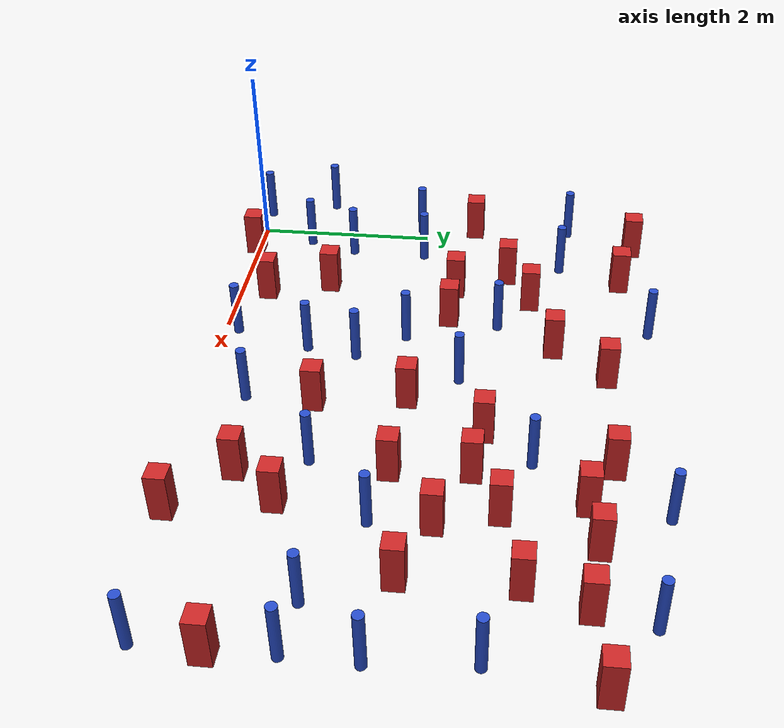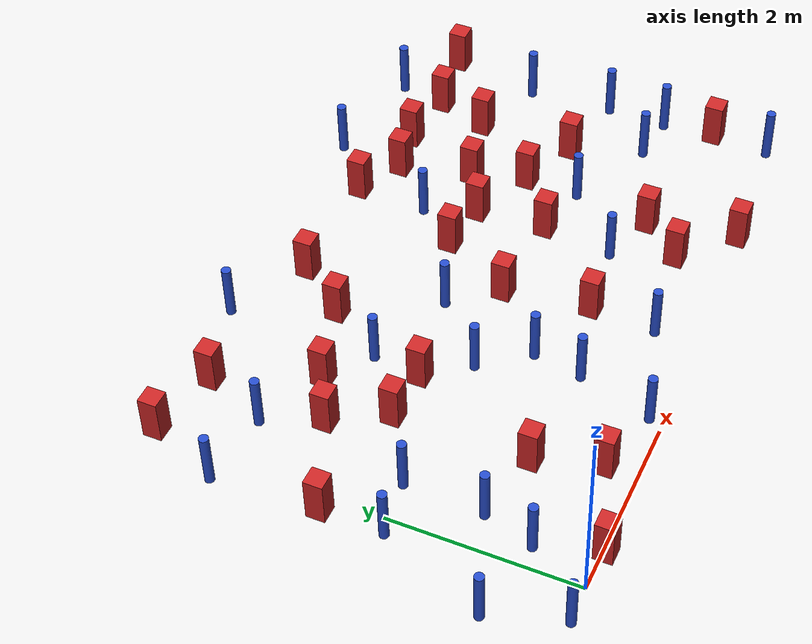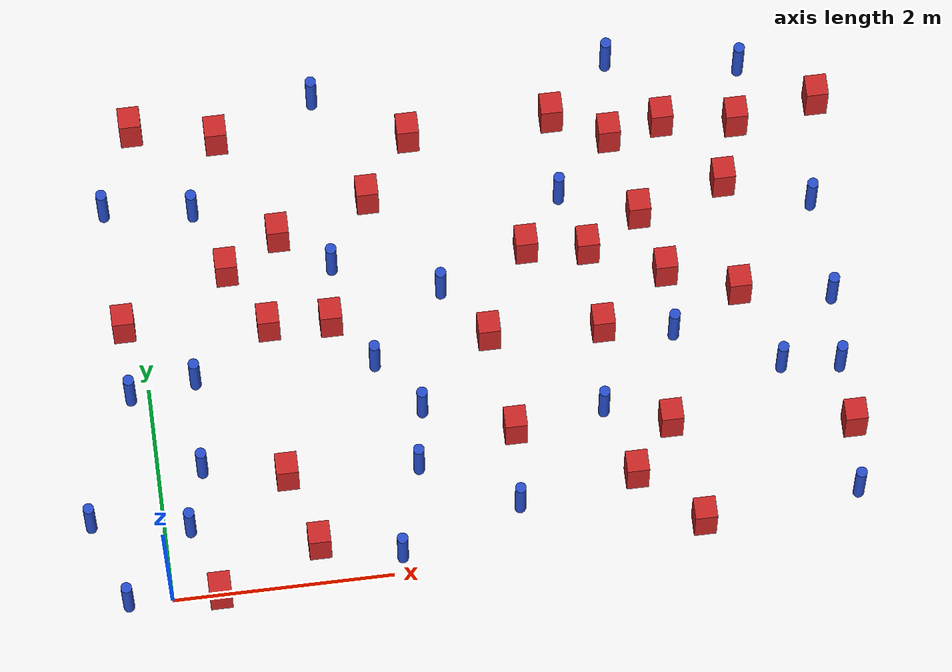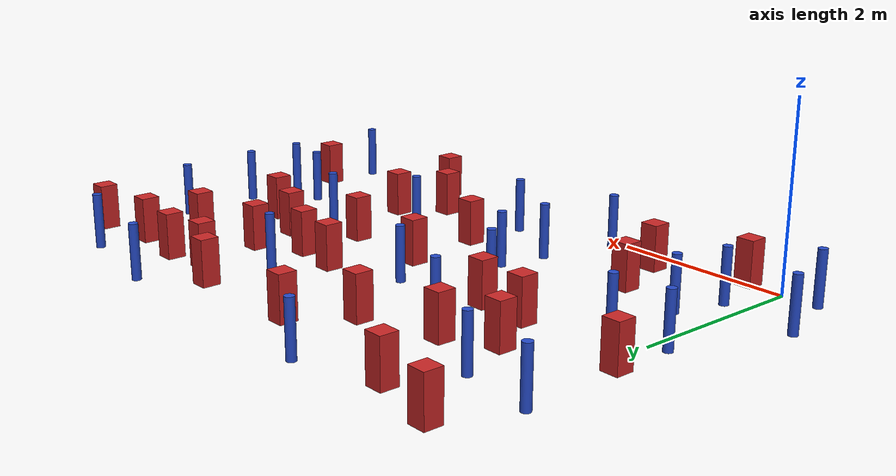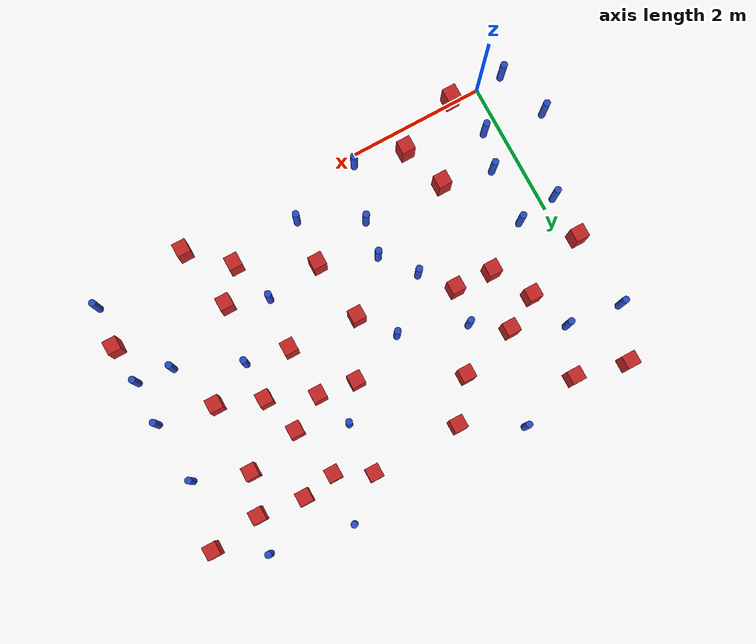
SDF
<sdf version="1.6">
 <model name="dense_97">
  <model name="square_post_obstacle3">
   <static>true</static>
   <pose>1.3197557422 3.28086362444 1.91545236811e-07 -7.35059704564e-06 1.12565212e-07 2.39332434364e-05</pose>
   <link name="link">
    <pose>0 0 0.25 0 -0 0</pose>
    <inertial>
     <mass>100</mass>
     <inertia>
      <ixx>0.166667</ixx>
      <ixy>0</ixy>
      <ixz>0</ixz>
      <iyy>0.166667</iyy>
      <iyz>0</iyz>
      <izz>0.166667</izz>
     </inertia>
    </inertial>
    <collision name="collision"><geometry><box><size>.2 .2 .5</size></box></geometry></collision>
    <visual name="visual">
     <geometry><box><size>.2 .2 .5</size></box></geometry>
     <material>
      <script><name>Gazebo/Red</name><uri>file://media/materials/scripts/gazebo.material</uri></script>
     </material>
    </visual>
   </link>
  </model>
  <model name="pole_obstacle7">
   <static>true</static>
   <pose>6.24190343363 1.45891795342 7.38925637345e-09 -8.471706928e-08 1.24976765134e-08 -1.74513093015e-07</pose>
   <link name="link">
    <pose>0 0 0.3 0 -0 0</pose>
    <inertial>
     <mass>1</mass>
     <inertia><ixx>0.145833</ixx><ixy>0</ixy><ixz>0</ixz><iyy>0.145833</iyy><iyz>0</iyz><izz>0.125</izz></inertia>
    </inertial>
    <collision name="collision">
     <geometry><cylinder><radius>0.05</radius><length>.6</length></cylinder></geometry>
    </collision>
    <visual name="visual">
     <geometry><cylinder><radius>0.05</radius><length>.6</length></cylinder></geometry>
     <material>
      <script><name>Gazebo/Blue</name><uri>file://media/materials/scripts/gazebo.material</uri></script>
     </material>
    </visual>
   </link>
  </model>
  <model name="square_post_obstacle10">
   <static>true</static>
   <pose>3.24088928727 1.18970993105 1.91545236811e-07 -7.35059704564e-06 1.12565212e-07 2.39332434364e-05</pose>
   <link name="link">
    <pose>0 0 0.25 0 -0 0</pose>
    <inertial>
     <mass>100</mass>
     <inertia>
      <ixx>0.166667</ixx>
      <ixy>0</ixy>
      <ixz>0</ixz>
      <iyy>0.166667</iyy>
      <iyz>0</iyz>
      <izz>0.166667</izz>
     </inertia>
    </inertial>
    <collision name="collision"><geometry><box><size>.2 .2 .5</size></box></geometry></collision>
    <visual name="visual">
     <geometry><box><size>.2 .2 .5</size></box></geometry>
     <material>
      <script><name>Gazebo/Red</name><uri>file://media/materials/scripts/gazebo.material</uri></script>
     </material>
    </visual>
   </link>
  </model>
  <model name="pole_obstacle15">
   <static>true</static>
   <pose>0.3983858445 1.15659528781 7.38925637345e-09 -8.47170692798e-08 1.24976765025e-08 -1.74513093018e-07</pose>
   <link name="link">
    <pose>0 0 0.3 0 -0 0</pose>
    <inertial>
     <mass>1</mass>
     <inertia><ixx>0.145833</ixx><ixy>0</ixy><ixz>0</ixz><iyy>0.145833</iyy><iyz>0</iyz><izz>0.125</izz></inertia>
    </inertial>
    <collision name="collision">
     <geometry><cylinder><radius>0.05</radius><length>.6</length></cylinder></geometry>
    </collision>
    <visual name="visual">
     <geometry><cylinder><radius>0.05</radius><length>.6</length></cylinder></geometry>
     <material>
      <script><name>Gazebo/Blue</name><uri>file://media/materials/scripts/gazebo.material</uri></script>
     </material>
    </visual>
   </link>
  </model>
  <model name="pole_obstacle17">
   <static>true</static>
   <pose>0.426997091301 2.00244062308 7.38925637345e-09 -8.47170692799e-08 1.2497676506e-08 -1.74513093018e-07</pose>
   <link name="link">
    <pose>0 0 0.3 0 -0 0</pose>
    <inertial>
     <mass>1</mass>
     <inertia><ixx>0.145833</ixx><ixy>0</ixy><ixz>0</ixz><iyy>0.145833</iyy><iyz>0</iyz><izz>0.125</izz></inertia>
    </inertial>
    <collision name="collision">
     <geometry><cylinder><radius>0.05</radius><length>.6</length></cylinder></geometry>
    </collision>
    <visual name="visual">
     <geometry><cylinder><radius>0.05</radius><length>.6</length></cylinder></geometry>
     <material>
      <script><name>Gazebo/Blue</name><uri>file://media/materials/scripts/gazebo.material</uri></script>
     </material>
    </visual>
   </link>
  </model>
  <model name="square_post_obstacle18">
   <static>true</static>
   <pose>0.0977057017905 4.46174153704 1.91545236811e-07 -7.35059704564e-06 1.12565212e-07 2.39332434364e-05</pose>
   <link name="link">
    <pose>0 0 0.25 0 -0 0</pose>
    <inertial>
     <mass>100</mass>
     <inertia>
      <ixx>0.166667</ixx>
      <ixy>0</ixy>
      <ixz>0</ixz>
      <iyy>0.166667</iyy>
      <iyz>0</iyz>
      <izz>0.166667</izz>
     </inertia>
    </inertial>
    <collision name="collision"><geometry><box><size>.2 .2 .5</size></box></geometry></collision>
    <visual name="visual">
     <geometry><box><size>.2 .2 .5</size></box></geometry>
     <material>
      <script><name>Gazebo/Red</name><uri>file://media/materials/scripts/gazebo.material</uri></script>
     </material>
    </visual>
   </link>
  </model>
  <model name="square_post_obstacle20">
   <static>true</static>
   <pose>1.3652218517 0.3256208881 1.91545236811e-07 -7.35059704564e-06 1.12565212e-07 2.39332434364e-05</pose>
   <link name="link">
    <pose>0 0 0.25 0 -0 0</pose>
    <inertial>
     <mass>100</mass>
     <inertia>
      <ixx>0.166667</ixx>
      <ixy>0</ixy>
      <ixz>0</ixz>
      <iyy>0.166667</iyy>
      <iyz>0</iyz>
      <izz>0.166667</izz>
     </inertia>
    </inertial>
    <collision name="collision"><geometry><box><size>.2 .2 .5</size></box></geometry></collision>
    <visual name="visual">
     <geometry><box><size>.2 .2 .5</size></box></geometry>
     <material>
      <script><name>Gazebo/Red</name><uri>file://media/materials/scripts/gazebo.material</uri></script>
     </material>
    </visual>
   </link>
  </model>
  <model name="square_post_obstacle29">
   <static>true</static>
   <pose>3.11275678927 2.10843833355 1.91545236811e-07 -7.35059704564e-06 1.12565212e-07 2.39332434364e-05</pose>
   <link name="link">
    <pose>0 0 0.25 0 -0 0</pose>
    <inertial>
     <mass>100</mass>
     <inertia>
      <ixx>0.166667</ixx>
      <ixy>0</ixy>
      <ixz>0</ixz>
      <iyy>0.166667</iyy>
      <iyz>0</iyz>
      <izz>0.166667</izz>
     </inertia>
    </inertial>
    <collision name="collision"><geometry><box><size>.2 .2 .5</size></box></geometry></collision>
    <visual name="visual">
     <geometry><box><size>.2 .2 .5</size></box></geometry>
     <material>
      <script><name>Gazebo/Red</name><uri>file://media/materials/scripts/gazebo.material</uri></script>
     </material>
    </visual>
   </link>
  </model>
  <model name="square_post_obstacle34">
   <static>true</static>
   <pose>1.15019855793 1.00390879413 1.91545236811e-07 -7.35059704564e-06 1.12565212e-07 2.39332434364e-05</pose>
   <link name="link">
    <pose>0 0 0.25 0 -0 0</pose>
    <inertial>
     <mass>100</mass>
     <inertia>
      <ixx>0.166667</ixx>
      <ixy>0</ixy>
      <ixz>0</ixz>
      <iyy>0.166667</iyy>
      <iyz>0</iyz>
      <izz>0.166667</izz>
     </inertia>
    </inertial>
    <collision name="collision"><geometry><box><size>.2 .2 .5</size></box></geometry></collision>
    <visual name="visual">
     <geometry><box><size>.2 .2 .5</size></box></geometry>
     <material>
      <script><name>Gazebo/Red</name><uri>file://media/materials/scripts/gazebo.material</uri></script>
     </material>
    </visual>
   </link>
  </model>
  <model name="pole_obstacle57">
   <static>true</static>
   <pose>5.71323885366 1.51683329573 7.38925637345e-09 -8.471706928e-08 1.24976765134e-08 -1.74513093015e-07</pose>
   <link name="link">
    <pose>0 0 0.3 0 -0 0</pose>
    <inertial>
     <mass>1</mass>
     <inertia><ixx>0.145833</ixx><ixy>0</ixy><ixz>0</ixz><iyy>0.145833</iyy><iyz>0</iyz><izz>0.125</izz></inertia>
    </inertial>
    <collision name="collision">
     <geometry><cylinder><radius>0.05</radius><length>.6</length></cylinder></geometry>
    </collision>
    <visual name="visual">
     <geometry><cylinder><radius>0.05</radius><length>.6</length></cylinder></geometry>
     <material>
      <script><name>Gazebo/Blue</name><uri>file://media/materials/scripts/gazebo.material</uri></script>
     </material>
    </visual>
   </link>
  </model>
  <model name="pole_obstacle61">
   <static>true</static>
   <pose>2.05943863107 1.97614568007 7.38925637345e-09 -8.47170692799e-08 1.24976764986e-08 -1.74513093023e-07</pose>
   <link name="link">
    <pose>0 0 0.3 0 -0 0</pose>
    <inertial>
     <mass>1</mass>
     <inertia><ixx>0.145833</ixx><ixy>0</ixy><ixz>0</ixz><iyy>0.145833</iyy><iyz>0</iyz><izz>0.125</izz></inertia>
    </inertial>
    <collision name="collision">
     <geometry><cylinder><radius>0.05</radius><length>.6</length></cylinder></geometry>
    </collision>
    <visual name="visual">
     <geometry><cylinder><radius>0.05</radius><length>.6</length></cylinder></geometry>
     <material>
      <script><name>Gazebo/Blue</name><uri>file://media/materials/scripts/gazebo.material</uri></script>
     </material>
    </visual>
   </link>
  </model>
  <model name="pole_obstacle62">
   <static>true</static>
   <pose>1.77789414145 2.94255412521 7.38925637345e-09 -8.47170692799e-08 1.24976765053e-08 -1.74513093017e-07</pose>
   <link name="link">
    <pose>0 0 0.3 0 -0 0</pose>
    <inertial>
     <mass>1</mass>
     <inertia><ixx>0.145833</ixx><ixy>0</ixy><ixz>0</ixz><iyy>0.145833</iyy><iyz>0</iyz><izz>0.125</izz></inertia>
    </inertial>
    <collision name="collision">
     <geometry><cylinder><radius>0.05</radius><length>.6</length></cylinder></geometry>
    </collision>
    <visual name="visual">
     <geometry><cylinder><radius>0.05</radius><length>.6</length></cylinder></geometry>
     <material>
      <script><name>Gazebo/Blue</name><uri>file://media/materials/scripts/gazebo.material</uri></script>
     </material>
    </visual>
   </link>
  </model>
  <model name="pole_obstacle68">
   <static>true</static>
   <pose>0.232396138266 0.614243767693 7.38925637345e-09 -8.47170692798e-08 1.24976764994e-08 -1.7451309302e-07</pose>
   <link name="link">
    <pose>0 0 0.3 0 -0 0</pose>
    <inertial>
     <mass>1</mass>
     <inertia><ixx>0.145833</ixx><ixy>0</ixy><ixz>0</ixz><iyy>0.145833</iyy><iyz>0</iyz><izz>0.125</izz></inertia>
    </inertial>
    <collision name="collision">
     <geometry><cylinder><radius>0.05</radius><length>.6</length></cylinder></geometry>
    </collision>
    <visual name="visual">
     <geometry><cylinder><radius>0.05</radius><length>.6</length></cylinder></geometry>
     <material>
      <script><name>Gazebo/Blue</name><uri>file://media/materials/scripts/gazebo.material</uri></script>
     </material>
    </visual>
   </link>
  </model>
  <model name="square_post_obstacle56">
   <static>true</static>
   <pose>3.54915562137 2.89608317039 1.91545236811e-07 -7.35059704564e-06 1.12565212e-07 2.39332434364e-05</pose>
   <link name="link">
    <pose>0 0 0.25 0 -0 0</pose>
    <inertial>
     <mass>100</mass>
     <inertia>
      <ixx>0.166667</ixx>
      <ixy>0</ixy>
      <ixz>0</ixz>
      <iyy>0.166667</iyy>
      <iyz>0</iyz>
      <izz>0.166667</izz>
     </inertia>
    </inertial>
    <collision name="collision"><geometry><box><size>.2 .2 .5</size></box></geometry></collision>
    <visual name="visual">
     <geometry><box><size>.2 .2 .5</size></box></geometry>
     <material>
      <script><name>Gazebo/Red</name><uri>file://media/materials/scripts/gazebo.material</uri></script>
     </material>
    </visual>
   </link>
  </model>
  <model name="square_post_obstacle57">
   <static>true</static>
   <pose>4.61116152091 3.10581729332 1.91545236811e-07 -7.35059704564e-06 1.12565212e-07 2.39332434364e-05</pose>
   <link name="link">
    <pose>0 0 0.25 0 -0 0</pose>
    <inertial>
     <mass>100</mass>
     <inertia>
      <ixx>0.166667</ixx>
      <ixy>0</ixy>
      <ixz>0</ixz>
      <iyy>0.166667</iyy>
      <iyz>0</iyz>
      <izz>0.166667</izz>
     </inertia>
    </inertial>
    <collision name="collision"><geometry><box><size>.2 .2 .5</size></box></geometry></collision>
    <visual name="visual">
     <geometry><box><size>.2 .2 .5</size></box></geometry>
     <material>
      <script><name>Gazebo/Red</name><uri>file://media/materials/scripts/gazebo.material</uri></script>
     </material>
    </visual>
   </link>
  </model>
  <model name="pole_obstacle74">
   <static>true</static>
   <pose>3.20152962979 0.485191721837 7.38925637345e-09 -8.47170692801e-08 1.24976765209e-08 -1.74513093011e-07</pose>
   <link name="link">
    <pose>0 0 0.3 0 -0 0</pose>
    <inertial>
     <mass>1</mass>
     <inertia><ixx>0.145833</ixx><ixy>0</ixy><ixz>0</ixz><iyy>0.145833</iyy><iyz>0</iyz><izz>0.125</izz></inertia>
    </inertial>
    <collision name="collision">
     <geometry><cylinder><radius>0.05</radius><length>.6</length></cylinder></geometry>
    </collision>
    <visual name="visual">
     <geometry><cylinder><radius>0.05</radius><length>.6</length></cylinder></geometry>
     <material>
      <script><name>Gazebo/Blue</name><uri>file://media/materials/scripts/gazebo.material</uri></script>
     </material>
    </visual>
   </link>
  </model>
  <model name="square_post_obstacle65">
   <static>true</static>
   <pose>6.36148696878 4.00992086524 1.91545236811e-07 -7.35059704564e-06 1.12565212e-07 2.39332434364e-05</pose>
   <link name="link">
    <pose>0 0 0.25 0 -0 0</pose>
    <inertial>
     <mass>100</mass>
     <inertia>
      <ixx>0.166667</ixx>
      <ixy>0</ixy>
      <ixz>0</ixz>
      <iyy>0.166667</iyy>
      <iyz>0</iyz>
      <izz>0.166667</izz>
     </inertia>
    </inertial>
    <collision name="collision"><geometry><box><size>.2 .2 .5</size></box></geometry></collision>
    <visual name="visual">
     <geometry><box><size>.2 .2 .5</size></box></geometry>
     <material>
      <script><name>Gazebo/Red</name><uri>file://media/materials/scripts/gazebo.material</uri></script>
     </material>
    </visual>
   </link>
  </model>
  <model name="pole_obstacle82">
   <static>true</static>
   <pose>2.7356437907 2.59532253878 7.38925637345e-09 -8.47170692798e-08 1.24976764939e-08 -1.74513093025e-07</pose>
   <link name="link">
    <pose>0 0 0.3 0 -0 0</pose>
    <inertial>
     <mass>1</mass>
     <inertia><ixx>0.145833</ixx><ixy>0</ixy><ixz>0</ixz><iyy>0.145833</iyy><iyz>0</iyz><izz>0.125</izz></inertia>
    </inertial>
    <collision name="collision">
     <geometry><cylinder><radius>0.05</radius><length>.6</length></cylinder></geometry>
    </collision>
    <visual name="visual">
     <geometry><cylinder><radius>0.05</radius><length>.6</length></cylinder></geometry>
     <material>
      <script><name>Gazebo/Blue</name><uri>file://media/materials/scripts/gazebo.material</uri></script>
     </material>
    </visual>
   </link>
  </model>
  <model name="pole_obstacle83">
   <static>true</static>
   <pose>4.06315226185 1.29344804844 7.38925637345e-09 -8.471706928e-08 1.24976765134e-08 -1.74513093015e-07</pose>
   <link name="link">
    <pose>0 0 0.3 0 -0 0</pose>
    <inertial>
     <mass>1</mass>
     <inertia><ixx>0.145833</ixx><ixy>0</ixy><ixz>0</ixz><iyy>0.145833</iyy><iyz>0</iyz><izz>0.125</izz></inertia>
    </inertial>
    <collision name="collision">
     <geometry><cylinder><radius>0.05</radius><length>.6</length></cylinder></geometry>
    </collision>
    <visual name="visual">
     <geometry><cylinder><radius>0.05</radius><length>.6</length></cylinder></geometry>
     <material>
      <script><name>Gazebo/Blue</name><uri>file://media/materials/scripts/gazebo.material</uri></script>
     </material>
    </visual>
   </link>
  </model>
  <model name="pole_obstacle86">
   <static>true</static>
   <pose>6.24404388155 0.258539240892 7.38925637345e-09 -8.47170692799e-08 1.24976765028e-08 -1.74513093019e-07</pose>
   <link name="link">
    <pose>0 0 0.3 0 -0 0</pose>
    <inertial>
     <mass>1</mass>
     <inertia><ixx>0.145833</ixx><ixy>0</ixy><ixz>0</ixz><iyy>0.145833</iyy><iyz>0</iyz><izz>0.125</izz></inertia>
    </inertial>
    <collision name="collision">
     <geometry><cylinder><radius>0.05</radius><length>.6</length></cylinder></geometry>
    </collision>
    <visual name="visual">
     <geometry><cylinder><radius>0.05</radius><length>.6</length></cylinder></geometry>
     <material>
      <script><name>Gazebo/Blue</name><uri>file://media/materials/scripts/gazebo.material</uri></script>
     </material>
    </visual>
   </link>
  </model>
  <model name="square_post_obstacle85">
   <static>true</static>
   <pose>2.60716563349 4.09937180237 1.91545236811e-07 -7.35059704564e-06 1.12565212e-07 2.39332434364e-05</pose>
   <link name="link">
    <pose>0 0 0.25 0 -0 0</pose>
    <inertial>
     <mass>100</mass>
     <inertia>
      <ixx>0.166667</ixx>
      <ixy>0</ixy>
      <ixz>0</ixz>
      <iyy>0.166667</iyy>
      <iyz>0</iyz>
      <izz>0.166667</izz>
     </inertia>
    </inertial>
    <collision name="collision"><geometry><box><size>.2 .2 .5</size></box></geometry></collision>
    <visual name="visual">
     <geometry><box><size>.2 .2 .5</size></box></geometry>
     <material>
      <script><name>Gazebo/Red</name><uri>file://media/materials/scripts/gazebo.material</uri></script>
     </material>
    </visual>
   </link>
  </model>
  <model name="square_post_obstacle86">
   <static>true</static>
   <pose>-0.163066882015 2.58072221107 1.91545236811e-07 -7.35059704564e-06 1.12565212e-07 2.39332434364e-05</pose>
   <link name="link">
    <pose>0 0 0.25 0 -0 0</pose>
    <inertial>
     <mass>100</mass>
     <inertia>
      <ixx>0.166667</ixx>
      <ixy>0</ixy>
      <ixz>0</ixz>
      <iyy>0.166667</iyy>
      <iyz>0</iyz>
      <izz>0.166667</izz>
     </inertia>
    </inertial>
    <collision name="collision"><geometry><box><size>.2 .2 .5</size></box></geometry></collision>
    <visual name="visual">
     <geometry><box><size>.2 .2 .5</size></box></geometry>
     <material>
      <script><name>Gazebo/Red</name><uri>file://media/materials/scripts/gazebo.material</uri></script>
     </material>
    </visual>
   </link>
  </model>
  <model name="pole_obstacle94">
   <static>true</static>
   <pose>1.77930428692 4.56713953124 7.38925637345e-09 -8.47170692799e-08 1.24976765033e-08 -1.74513093018e-07</pose>
   <link name="link">
    <pose>0 0 0.3 0 -0 0</pose>
    <inertial>
     <mass>1</mass>
     <inertia><ixx>0.145833</ixx><ixy>0</ixy><ixz>0</ixz><iyy>0.145833</iyy><iyz>0</iyz><izz>0.125</izz></inertia>
    </inertial>
    <collision name="collision">
     <geometry><cylinder><radius>0.05</radius><length>.6</length></cylinder></geometry>
    </collision>
    <visual name="visual">
     <geometry><cylinder><radius>0.05</radius><length>.6</length></cylinder></geometry>
     <material>
      <script><name>Gazebo/Blue</name><uri>file://media/materials/scripts/gazebo.material</uri></script>
     </material>
    </visual>
   </link>
  </model>
  <model name="pole_obstacle95">
   <static>true</static>
   <pose>2.09755188652 0.146711996453 7.38925637345e-09 -8.471706928e-08 1.2497676517e-08 -1.74513093012e-07</pose>
   <link name="link">
    <pose>0 0 0.3 0 -0 0</pose>
    <inertial>
     <mass>1</mass>
     <inertia><ixx>0.145833</ixx><ixy>0</ixy><ixz>0</ixz><iyy>0.145833</iyy><iyz>0</iyz><izz>0.125</izz></inertia>
    </inertial>
    <collision name="collision">
     <geometry><cylinder><radius>0.05</radius><length>.6</length></cylinder></geometry>
    </collision>
    <visual name="visual">
     <geometry><cylinder><radius>0.05</radius><length>.6</length></cylinder></geometry>
     <material>
      <script><name>Gazebo/Blue</name><uri>file://media/materials/scripts/gazebo.material</uri></script>
     </material>
    </visual>
   </link>
  </model>
  <model name="square_post_obstacle88">
   <static>true</static>
   <pose>0.433019803727 -0.029692643432 1.91545236811e-07 -7.35059704564e-06 1.12565212e-07 2.39332434364e-05</pose>
   <link name="link">
    <pose>0 0 0.25 0 -0 0</pose>
    <inertial>
     <mass>100</mass>
     <inertia>
      <ixx>0.166667</ixx>
      <ixy>0</ixy>
      <ixz>0</ixz>
      <iyy>0.166667</iyy>
      <iyz>0</iyz>
      <izz>0.166667</izz>
     </inertia>
    </inertial>
    <collision name="collision"><geometry><box><size>.2 .2 .5</size></box></geometry></collision>
    <visual name="visual">
     <geometry><box><size>.2 .2 .5</size></box></geometry>
     <material>
      <script><name>Gazebo/Red</name><uri>file://media/materials/scripts/gazebo.material</uri></script>
     </material>
    </visual>
   </link>
  </model>
  <model name="pole_obstacle98">
   <static>true</static>
   <pose>2.34051117027 0.954785378284 7.38925637345e-09 -8.47170692799e-08 1.24976765074e-08 -1.74513093017e-07</pose>
   <link name="link">
    <pose>0 0 0.3 0 -0 0</pose>
    <inertial>
     <mass>1</mass>
     <inertia><ixx>0.145833</ixx><ixy>0</ixy><ixz>0</ixz><iyy>0.145833</iyy><iyz>0</iyz><izz>0.125</izz></inertia>
    </inertial>
    <collision name="collision">
     <geometry><cylinder><radius>0.05</radius><length>.6</length></cylinder></geometry>
    </collision>
    <visual name="visual">
     <geometry><cylinder><radius>0.05</radius><length>.6</length></cylinder></geometry>
     <material>
      <script><name>Gazebo/Blue</name><uri>file://media/materials/scripts/gazebo.material</uri></script>
     </material>
    </visual>
   </link>
  </model>
  <model name="square_post_obstacle90">
   <static>true</static>
   <pose>4.78132902671 2.52356682003 1.91545236811e-07 -7.35059704564e-06 1.12565212e-07 2.39332434364e-05</pose>
   <link name="link">
    <pose>0 0 0.25 0 -0 0</pose>
    <inertial>
     <mass>100</mass>
     <inertia>
      <ixx>0.166667</ixx>
      <ixy>0</ixy>
      <ixz>0</ixz>
      <iyy>0.166667</iyy>
      <iyz>0</iyz>
      <izz>0.166667</izz>
     </inertia>
    </inertial>
    <collision name="collision"><geometry><box><size>.2 .2 .5</size></box></geometry></collision>
    <visual name="visual">
     <geometry><box><size>.2 .2 .5</size></box></geometry>
     <material>
      <script><name>Gazebo/Red</name><uri>file://media/materials/scripts/gazebo.material</uri></script>
     </material>
    </visual>
   </link>
  </model>
  <model name="square_post_obstacle92">
   <static>true</static>
   <pose>6.28551571587 0.887398299702 1.91545236811e-07 -7.35059704564e-06 1.12565212e-07 2.39332434364e-05</pose>
   <link name="link">
    <pose>0 0 0.25 0 -0 0</pose>
    <inertial>
     <mass>100</mass>
     <inertia>
      <ixx>0.166667</ixx>
      <ixy>0</ixy>
      <ixz>0</ixz>
      <iyy>0.166667</iyy>
      <iyz>0</iyz>
      <izz>0.166667</izz>
     </inertia>
    </inertial>
    <collision name="collision"><geometry><box><size>.2 .2 .5</size></box></geometry></collision>
    <visual name="visual">
     <geometry><box><size>.2 .2 .5</size></box></geometry>
     <material>
      <script><name>Gazebo/Red</name><uri>file://media/materials/scripts/gazebo.material</uri></script>
     </material>
    </visual>
   </link>
  </model>
  <model name="square_post_obstacle93">
   <static>true</static>
   <pose>0.864168355828 4.28602983399 1.91545236811e-07 -7.35059704564e-06 1.12565212e-07 2.39332434364e-05</pose>
   <link name="link">
    <pose>0 0 0.25 0 -0 0</pose>
    <inertial>
     <mass>100</mass>
     <inertia>
      <ixx>0.166667</ixx>
      <ixy>0</ixy>
      <ixz>0</ixz>
      <iyy>0.166667</iyy>
      <iyz>0</iyz>
      <izz>0.166667</izz>
     </inertia>
    </inertial>
    <collision name="collision"><geometry><box><size>.2 .2 .5</size></box></geometry></collision>
    <visual name="visual">
     <geometry><box><size>.2 .2 .5</size></box></geometry>
     <material>
      <script><name>Gazebo/Red</name><uri>file://media/materials/scripts/gazebo.material</uri></script>
     </material>
    </visual>
   </link>
  </model>
  <model name="square_post_obstacle94">
   <static>true</static>
   <pose>4.10478502225 2.82067833383 1.91545236811e-07 -7.35059704564e-06 1.12565212e-07 2.39332434364e-05</pose>
   <link name="link">
    <pose>0 0 0.25 0 -0 0</pose>
    <inertial>
     <mass>100</mass>
     <inertia>
      <ixx>0.166667</ixx>
      <ixy>0</ixy>
      <ixz>0</ixz>
      <iyy>0.166667</iyy>
      <iyz>0</iyz>
      <izz>0.166667</izz>
     </inertia>
    </inertial>
    <collision name="collision"><geometry><box><size>.2 .2 .5</size></box></geometry></collision>
    <visual name="visual">
     <geometry><box><size>.2 .2 .5</size></box></geometry>
     <material>
      <script><name>Gazebo/Red</name><uri>file://media/materials/scripts/gazebo.material</uri></script>
     </material>
    </visual>
   </link>
  </model>
  <model name="square_post_obstacle96">
   <static>true</static>
   <pose>4.27390219301 0.64078495126 1.91545236811e-07 -7.35059704564e-06 1.12565212e-07 2.39332434364e-05</pose>
   <link name="link">
    <pose>0 0 0.25 0 -0 0</pose>
    <inertial>
     <mass>100</mass>
     <inertia>
      <ixx>0.166667</ixx>
      <ixy>0</ixy>
      <ixz>0</ixz>
      <iyy>0.166667</iyy>
      <iyz>0</iyz>
      <izz>0.166667</izz>
     </inertia>
    </inertial>
    <collision name="collision"><geometry><box><size>.2 .2 .5</size></box></geometry></collision>
    <visual name="visual">
     <geometry><box><size>.2 .2 .5</size></box></geometry>
     <material>
      <script><name>Gazebo/Red</name><uri>file://media/materials/scripts/gazebo.material</uri></script>
     </material>
    </visual>
   </link>
  </model>
  <model name="square_post_obstacle97">
   <static>true</static>
   <pose>4.14987288107 2.05876452631 1.91545236811e-07 -7.35059704564e-06 1.12565212e-07 2.39332434364e-05</pose>
   <link name="link">
    <pose>0 0 0.25 0 -0 0</pose>
    <inertial>
     <mass>100</mass>
     <inertia>
      <ixx>0.166667</ixx>
      <ixy>0</ixy>
      <ixz>0</ixz>
      <iyy>0.166667</iyy>
      <iyz>0</iyz>
      <izz>0.166667</izz>
     </inertia>
    </inertial>
    <collision name="collision"><geometry><box><size>.2 .2 .5</size></box></geometry></collision>
    <visual name="visual">
     <geometry><box><size>.2 .2 .5</size></box></geometry>
     <material>
      <script><name>Gazebo/Red</name><uri>file://media/materials/scripts/gazebo.material</uri></script>
     </material>
    </visual>
   </link>
  </model>
  <model name="square_post_obstacle98">
   <static>true</static>
   <pose>4.43185412169 3.87622848222 1.91545236811e-07 -7.35059704564e-06 1.12565212e-07 2.39332434364e-05</pose>
   <link name="link">
    <pose>0 0 0.25 0 -0 0</pose>
    <inertial>
     <mass>100</mass>
     <inertia>
      <ixx>0.166667</ixx>
      <ixy>0</ixy>
      <ixz>0</ixz>
      <iyy>0.166667</iyy>
      <iyz>0</iyz>
      <izz>0.166667</izz>
     </inertia>
    </inertial>
    <collision name="collision"><geometry><box><size>.2 .2 .5</size></box></geometry></collision>
    <visual name="visual">
     <geometry><box><size>.2 .2 .5</size></box></geometry>
     <material>
      <script><name>Gazebo/Red</name><uri>file://media/materials/scripts/gazebo.material</uri></script>
     </material>
    </visual>
   </link>
  </model>
  <model name="pole_obstacle107">
   <static>true</static>
   <pose>2.43385732723 1.48607030197 7.38925637345e-09 -8.471706928e-08 1.24976765152e-08 -1.74513093012e-07</pose>
   <link name="link">
    <pose>0 0 0.3 0 -0 0</pose>
    <inertial>
     <mass>1</mass>
     <inertia><ixx>0.145833</ixx><ixy>0</ixy><ixz>0</ixz><iyy>0.145833</iyy><iyz>0</iyz><izz>0.125</izz></inertia>
    </inertial>
    <collision name="collision">
     <geometry><cylinder><radius>0.05</radius><length>.6</length></cylinder></geometry>
    </collision>
    <visual name="visual">
     <geometry><cylinder><radius>0.05</radius><length>.6</length></cylinder></geometry>
     <material>
      <script><name>Gazebo/Blue</name><uri>file://media/materials/scripts/gazebo.material</uri></script>
     </material>
    </visual>
   </link>
  </model>
  <model name="pole_obstacle111">
   <static>true</static>
   <pose>6.25725725224 2.11364150616 7.38925637345e-09 -8.47170692798e-08 1.24976764937e-08 -1.74513093023e-07</pose>
   <link name="link">
    <pose>0 0 0.3 0 -0 0</pose>
    <inertial>
     <mass>1</mass>
     <inertia><ixx>0.145833</ixx><ixy>0</ixy><ixz>0</ixz><iyy>0.145833</iyy><iyz>0</iyz><izz>0.125</izz></inertia>
    </inertial>
    <collision name="collision">
     <geometry><cylinder><radius>0.05</radius><length>.6</length></cylinder></geometry>
    </collision>
    <visual name="visual">
     <geometry><cylinder><radius>0.05</radius><length>.6</length></cylinder></geometry>
     <material>
      <script><name>Gazebo/Blue</name><uri>file://media/materials/scripts/gazebo.material</uri></script>
     </material>
    </visual>
   </link>
  </model>
  <model name="square_post_obstacle109">
   <static>true</static>
   <pose>4.64341971379 1.08641750328 1.91545236811e-07 -7.35059704564e-06 1.12565212e-07 2.39332434364e-05</pose>
   <link name="link">
    <pose>0 0 0.25 0 -0 0</pose>
    <inertial>
     <mass>100</mass>
     <inertia>
      <ixx>0.166667</ixx>
      <ixy>0</ixy>
      <ixz>0</ixz>
      <iyy>0.166667</iyy>
      <iyz>0</iyz>
      <izz>0.166667</izz>
     </inertia>
    </inertial>
    <collision name="collision"><geometry><box><size>.2 .2 .5</size></box></geometry></collision>
    <visual name="visual">
     <geometry><box><size>.2 .2 .5</size></box></geometry>
     <material>
      <script><name>Gazebo/Red</name><uri>file://media/materials/scripts/gazebo.material</uri></script>
     </material>
    </visual>
   </link>
  </model>
  <model name="square_post_obstacle114">
   <static>true</static>
   <pose>1.70770236837 2.41016588496 1.91545236811e-07 -7.35059704564e-06 1.12565212e-07 2.39332434364e-05</pose>
   <link name="link">
    <pose>0 0 0.25 0 -0 0</pose>
    <inertial>
     <mass>100</mass>
     <inertia>
      <ixx>0.166667</ixx>
      <ixy>0</ixy>
      <ixz>0</ixz>
      <iyy>0.166667</iyy>
      <iyz>0</iyz>
      <izz>0.166667</izz>
     </inertia>
    </inertial>
    <collision name="collision"><geometry><box><size>.2 .2 .5</size></box></geometry></collision>
    <visual name="visual">
     <geometry><box><size>.2 .2 .5</size></box></geometry>
     <material>
      <script><name>Gazebo/Red</name><uri>file://media/materials/scripts/gazebo.material</uri></script>
     </material>
    </visual>
   </link>
  </model>
  <model name="square_post_obstacle117">
   <static>true</static>
   <pose>1.14015338134 2.43655851726 1.91545236811e-07 -7.35059704564e-06 1.12565212e-07 2.39332434364e-05</pose>
   <link name="link">
    <pose>0 0 0.25 0 -0 0</pose>
    <inertial>
     <mass>100</mass>
     <inertia>
      <ixx>0.166667</ixx>
      <ixy>0</ixy>
      <ixz>0</ixz>
      <iyy>0.166667</iyy>
      <iyz>0</iyz>
      <izz>0.166667</izz>
     </inertia>
    </inertial>
    <collision name="collision"><geometry><box><size>.2 .2 .5</size></box></geometry></collision>
    <visual name="visual">
     <geometry><box><size>.2 .2 .5</size></box></geometry>
     <material>
      <script><name>Gazebo/Red</name><uri>file://media/materials/scripts/gazebo.material</uri></script>
     </material>
    </visual>
   </link>
  </model>
  <model name="square_post_obstacle119">
   <static>true</static>
   <pose>0.818690155547 3.00788359256 1.91545236811e-07 -7.35059704564e-06 1.12565212e-07 2.39332434364e-05</pose>
   <link name="link">
    <pose>0 0 0.25 0 -0 0</pose>
    <inertial>
     <mass>100</mass>
     <inertia>
      <ixx>0.166667</ixx>
      <ixy>0</ixy>
      <ixz>0</ixz>
      <iyy>0.166667</iyy>
      <iyz>0</iyz>
      <izz>0.166667</izz>
     </inertia>
    </inertial>
    <collision name="collision"><geometry><box><size>.2 .2 .5</size></box></geometry></collision>
    <visual name="visual">
     <geometry><box><size>.2 .2 .5</size></box></geometry>
     <material>
      <script><name>Gazebo/Red</name><uri>file://media/materials/scripts/gazebo.material</uri></script>
     </material>
    </visual>
   </link>
  </model>
  <model name="pole_obstacle121">
   <static>true</static>
   <pose>4.7839199223 1.94315050756 7.38925637345e-09 -8.471706928e-08 1.24976765134e-08 -1.74513093015e-07</pose>
   <link name="link">
    <pose>0 0 0.3 0 -0 0</pose>
    <inertial>
     <mass>1</mass>
     <inertia><ixx>0.145833</ixx><ixy>0</ixy><ixz>0</ixz><iyy>0.145833</iyy><iyz>0</iyz><izz>0.125</izz></inertia>
    </inertial>
    <collision name="collision">
     <geometry><cylinder><radius>0.05</radius><length>.6</length></cylinder></geometry>
    </collision>
    <visual name="visual">
     <geometry><cylinder><radius>0.05</radius><length>.6</length></cylinder></geometry>
     <material>
      <script><name>Gazebo/Blue</name><uri>file://media/materials/scripts/gazebo.material</uri></script>
     </material>
    </visual>
   </link>
  </model>
  <model name="pole_obstacle139">
   <static>true</static>
   <pose>4.5008877238 4.61528263292 7.38925637345e-09 -8.47170692796e-08 1.24976764786e-08 -1.74513093032e-07</pose>
   <link name="link">
    <pose>0 0 0.3 0 -0 0</pose>
    <inertial>
     <mass>1</mass>
     <inertia><ixx>0.145833</ixx><ixy>0</ixy><ixz>0</ixz><iyy>0.145833</iyy><iyz>0</iyz><izz>0.125</izz></inertia>
    </inertial>
    <collision name="collision">
     <geometry><cylinder><radius>0.05</radius><length>.6</length></cylinder></geometry>
    </collision>
    <visual name="visual">
     <geometry><cylinder><radius>0.05</radius><length>.6</length></cylinder></geometry>
     <material>
      <script><name>Gazebo/Blue</name><uri>file://media/materials/scripts/gazebo.material</uri></script>
     </material>
    </visual>
   </link>
  </model>
  <model name="square_post_obstacle135">
   <static>true</static>
   <pose>5.60538178076 3.88804907644 1.91545236811e-07 -7.35059704564e-06 1.12565212e-07 2.39332434364e-05</pose>
   <link name="link">
    <pose>0 0 0.25 0 -0 0</pose>
    <inertial>
     <mass>100</mass>
     <inertia>
      <ixx>0.166667</ixx>
      <ixy>0</ixy>
      <ixz>0</ixz>
      <iyy>0.166667</iyy>
      <iyz>0</iyz>
      <izz>0.166667</izz>
     </inertia>
    </inertial>
    <collision name="collision"><geometry><box><size>.2 .2 .5</size></box></geometry></collision>
    <visual name="visual">
     <geometry><box><size>.2 .2 .5</size></box></geometry>
     <material>
      <script><name>Gazebo/Red</name><uri>file://media/materials/scripts/gazebo.material</uri></script>
     </material>
    </visual>
   </link>
  </model>
  <model name="pole_obstacle144">
   <static>true</static>
   <pose>-0.393719172604 -0.0109213557006 7.38925637345e-09 -8.47170692798e-08 1.24976764932e-08 -1.74513093025e-07</pose>
   <link name="link">
    <pose>0 0 0.3 0 -0 0</pose>
    <inertial>
     <mass>1</mass>
     <inertia><ixx>0.145833</ixx><ixy>0</ixy><ixz>0</ixz><iyy>0.145833</iyy><iyz>0</iyz><izz>0.125</izz></inertia>
    </inertial>
    <collision name="collision">
     <geometry><cylinder><radius>0.05</radius><length>.6</length></cylinder></geometry>
    </collision>
    <visual name="visual">
     <geometry><cylinder><radius>0.05</radius><length>.6</length></cylinder></geometry>
     <material>
      <script><name>Gazebo/Blue</name><uri>file://media/materials/scripts/gazebo.material</uri></script>
     </material>
    </visual>
   </link>
  </model>
  <model name="pole_obstacle149">
   <static>true</static>
   <pose>3.91334375263 3.3724441112 7.38925637345e-09 -8.47170692798e-08 1.24976764939e-08 -1.74513093025e-07</pose>
   <link name="link">
    <pose>0 0 0.3 0 -0 0</pose>
    <inertial>
     <mass>1</mass>
     <inertia><ixx>0.145833</ixx><ixy>0</ixy><ixz>0</ixz><iyy>0.145833</iyy><iyz>0</iyz><izz>0.125</izz></inertia>
    </inertial>
    <collision name="collision">
     <geometry><cylinder><radius>0.05</radius><length>.6</length></cylinder></geometry>
    </collision>
    <visual name="visual">
     <geometry><cylinder><radius>0.05</radius><length>.6</length></cylinder></geometry>
     <material>
      <script><name>Gazebo/Blue</name><uri>file://media/materials/scripts/gazebo.material</uri></script>
     </material>
    </visual>
   </link>
  </model>
  <model name="square_post_obstacle143">
   <static>true</static>
   <pose>2.17059117664 3.54823367026 1.91545236811e-07 -7.35059704564e-06 1.12565212e-07 2.39332434364e-05</pose>
   <link name="link">
    <pose>0 0 0.25 0 -0 0</pose>
    <inertial>
     <mass>100</mass>
     <inertia>
      <ixx>0.166667</ixx>
      <ixy>0</ixy>
      <ixz>0</ixz>
      <iyy>0.166667</iyy>
      <iyz>0</iyz>
      <izz>0.166667</izz>
     </inertia>
    </inertial>
    <collision name="collision"><geometry><box><size>.2 .2 .5</size></box></geometry></collision>
    <visual name="visual">
     <geometry><box><size>.2 .2 .5</size></box></geometry>
     <material>
      <script><name>Gazebo/Red</name><uri>file://media/materials/scripts/gazebo.material</uri></script>
     </material>
    </visual>
   </link>
  </model>
  <model name="pole_obstacle163">
   <static>true</static>
   <pose>-0.230195207265 3.70756932335 7.38925637345e-09 -8.47170692792e-08 1.24976764353e-08 -1.74513093043e-07</pose>
   <link name="link">
    <pose>0 0 0.3 0 -0 0</pose>
    <inertial>
     <mass>1</mass>
     <inertia><ixx>0.145833</ixx><ixy>0</ixy><ixz>0</ixz><iyy>0.145833</iyy><iyz>0</iyz><izz>0.125</izz></inertia>
    </inertial>
    <collision name="collision">
     <geometry><cylinder><radius>0.05</radius><length>.6</length></cylinder></geometry>
    </collision>
    <visual name="visual">
     <geometry><cylinder><radius>0.05</radius><length>.6</length></cylinder></geometry>
     <material>
      <script><name>Gazebo/Blue</name><uri>file://media/materials/scripts/gazebo.material</uri></script>
     </material>
    </visual>
   </link>
  </model>
  <model name="pole_obstacle164">
   <static>true</static>
   <pose>6.19087508599 3.03423610158 7.38925637345e-09 -8.47170692798e-08 1.24976764937e-08 -1.74513093023e-07</pose>
   <link name="link">
    <pose>0 0 0.3 0 -0 0</pose>
    <inertial>
     <mass>1</mass>
     <inertia><ixx>0.145833</ixx><ixy>0</ixy><ixz>0</ixz><iyy>0.145833</iyy><iyz>0</iyz><izz>0.125</izz></inertia>
    </inertial>
    <collision name="collision">
     <geometry><cylinder><radius>0.05</radius><length>.6</length></cylinder></geometry>
    </collision>
    <visual name="visual">
     <geometry><cylinder><radius>0.05</radius><length>.6</length></cylinder></geometry>
     <material>
      <script><name>Gazebo/Blue</name><uri>file://media/materials/scripts/gazebo.material</uri></script>
     </material>
    </visual>
   </link>
  </model>
  <model name="pole_obstacle166">
   <static>true</static>
   <pose>-0.651727215629 0.761975274657 7.38925637345e-09 -8.47170692799e-08 1.24976765008e-08 -1.7451309302e-07</pose>
   <link name="link">
    <pose>0 0 0.3 0 -0 0</pose>
    <inertial>
     <mass>1</mass>
     <inertia><ixx>0.145833</ixx><ixy>0</ixy><ixz>0</ixz><iyy>0.145833</iyy><iyz>0</iyz><izz>0.125</izz></inertia>
    </inertial>
    <collision name="collision">
     <geometry><cylinder><radius>0.05</radius><length>.6</length></cylinder></geometry>
    </collision>
    <visual name="visual">
     <geometry><cylinder><radius>0.05</radius><length>.6</length></cylinder></geometry>
     <material>
      <script><name>Gazebo/Blue</name><uri>file://media/materials/scripts/gazebo.material</uri></script>
     </material>
    </visual>
   </link>
  </model>
  <model name="pole_obstacle169">
   <static>true</static>
   <pose>0.577115433787 3.60987262973 7.38925637345e-09 -8.47170692799e-08 1.2497676509e-08 -1.74513093016e-07</pose>
   <link name="link">
    <pose>0 0 0.3 0 -0 0</pose>
    <inertial>
     <mass>1</mass>
     <inertia><ixx>0.145833</ixx><ixy>0</ixy><ixz>0</ixz><iyy>0.145833</iyy><iyz>0</iyz><izz>0.125</izz></inertia>
    </inertial>
    <collision name="collision">
     <geometry><cylinder><radius>0.05</radius><length>.6</length></cylinder></geometry>
    </collision>
    <visual name="visual">
     <geometry><cylinder><radius>0.05</radius><length>.6</length></cylinder></geometry>
     <material>
      <script><name>Gazebo/Blue</name><uri>file://media/materials/scripts/gazebo.material</uri></script>
     </material>
    </visual>
   </link>
  </model>
  <model name="square_post_obstacle172">
   <static>true</static>
   <pose>5.41440847747 3.31971025382 1.91545236811e-07 -7.35059704564e-06 1.12565212e-07 2.39332434364e-05</pose>
   <link name="link">
    <pose>0 0 0.25 0 -0 0</pose>
    <inertial>
     <mass>100</mass>
     <inertia>
      <ixx>0.166667</ixx>
      <ixy>0</ixy>
      <ixz>0</ixz>
      <iyy>0.166667</iyy>
      <iyz>0</iyz>
      <izz>0.166667</izz>
     </inertia>
    </inertial>
    <collision name="collision"><geometry><box><size>.2 .2 .5</size></box></geometry></collision>
    <visual name="visual">
     <geometry><box><size>.2 .2 .5</size></box></geometry>
     <material>
      <script><name>Gazebo/Red</name><uri>file://media/materials/scripts/gazebo.material</uri></script>
     </material>
    </visual>
   </link>
  </model>
  <model name="pole_obstacle184">
   <static>true</static>
   <pose>5.70371276246 4.41976722074 7.38925637345e-09 -8.47170692796e-08 1.24976764786e-08 -1.74513093032e-07</pose>
   <link name="link">
    <pose>0 0 0.3 0 -0 0</pose>
    <inertial>
     <mass>1</mass>
     <inertia><ixx>0.145833</ixx><ixy>0</ixy><ixz>0</ixz><iyy>0.145833</iyy><iyz>0</iyz><izz>0.125</izz></inertia>
    </inertial>
    <collision name="collision">
     <geometry><cylinder><radius>0.05</radius><length>.6</length></cylinder></geometry>
    </collision>
    <visual name="visual">
     <geometry><cylinder><radius>0.05</radius><length>.6</length></cylinder></geometry>
     <material>
      <script><name>Gazebo/Blue</name><uri>file://media/materials/scripts/gazebo.material</uri></script>
     </material>
    </visual>
   </link>
  </model>
  <model name="pole_obstacle187">
   <static>true</static>
   <pose>-0.170384570132 1.91981507319 7.38925637345e-09 -8.47170692799e-08 1.24976765103e-08 -1.74513093015e-07</pose>
   <link name="link">
    <pose>0 0 0.3 0 -0 0</pose>
    <inertial>
     <mass>1</mass>
     <inertia><ixx>0.145833</ixx><ixy>0</ixy><ixz>0</ixz><iyy>0.145833</iyy><iyz>0</iyz><izz>0.125</izz></inertia>
    </inertial>
    <collision name="collision">
     <geometry><cylinder><radius>0.05</radius><length>.6</length></cylinder></geometry>
    </collision>
    <visual name="visual">
     <geometry><cylinder><radius>0.05</radius><length>.6</length></cylinder></geometry>
     <material>
      <script><name>Gazebo/Blue</name><uri>file://media/materials/scripts/gazebo.material</uri></script>
     </material>
    </visual>
   </link>
  </model>
  <model name="square_post_obstacle204">
   <static>true</static>
   <pose>3.93483831885 4.13323538213 1.91545236811e-07 -7.35059704564e-06 1.12565212e-07 2.39332434364e-05</pose>
   <link name="link">
    <pose>0 0 0.25 0 -0 0</pose>
    <inertial>
     <mass>100</mass>
     <inertia>
      <ixx>0.166667</ixx>
      <ixy>0</ixy>
      <ixz>0</ixz>
      <iyy>0.166667</iyy>
      <iyz>0</iyz>
      <izz>0.166667</izz>
     </inertia>
    </inertial>
    <collision name="collision"><geometry><box><size>.2 .2 .5</size></box></geometry></collision>
    <visual name="visual">
     <geometry><box><size>.2 .2 .5</size></box></geometry>
     <material>
      <script><name>Gazebo/Red</name><uri>file://media/materials/scripts/gazebo.material</uri></script>
     </material>
    </visual>
   </link>
  </model>
  <model name="square_post_obstacle206">
   <static>true</static>
   <pose>5.42209443904 2.2688981119 1.91545236811e-07 -7.35059704564e-06 1.12565212e-07 2.39332434364e-05</pose>
   <link name="link">
    <pose>0 0 0.25 0 -0 0</pose>
    <inertial>
     <mass>100</mass>
     <inertia>
      <ixx>0.166667</ixx>
      <ixy>0</ixy>
      <ixz>0</ixz>
      <iyy>0.166667</iyy>
      <iyz>0</iyz>
      <izz>0.166667</izz>
     </inertia>
    </inertial>
    <collision name="collision"><geometry><box><size>.2 .2 .5</size></box></geometry></collision>
    <visual name="visual">
     <geometry><box><size>.2 .2 .5</size></box></geometry>
     <material>
      <script><name>Gazebo/Red</name><uri>file://media/materials/scripts/gazebo.material</uri></script>
     </material>
    </visual>
   </link>
  </model>
  <model name="square_post_obstacle208">
   <static>true</static>
   <pose>4.92811216235 3.96946474582 1.91545236811e-07 -7.35059704564e-06 1.12565212e-07 2.39332434364e-05</pose>
   <link name="link">
    <pose>0 0 0.25 0 -0 0</pose>
    <inertial>
     <mass>100</mass>
     <inertia>
      <ixx>0.166667</ixx>
      <ixy>0</ixy>
      <ixz>0</ixz>
      <iyy>0.166667</iyy>
      <iyz>0</iyz>
      <izz>0.166667</izz>
     </inertia>
    </inertial>
    <collision name="collision"><geometry><box><size>.2 .2 .5</size></box></geometry></collision>
    <visual name="visual">
     <geometry><box><size>.2 .2 .5</size></box></geometry>
     <material>
      <script><name>Gazebo/Red</name><uri>file://media/materials/scripts/gazebo.material</uri></script>
     </material>
    </visual>
   </link>
  </model>
  <model name="square_post_obstacle227">
   <static>true</static>
   <pose>4.8204199648 0.131221988081 1.91545236811e-07 -7.35059704564e-06 1.12565212e-07 2.39332434364e-05</pose>
   <link name="link">
    <pose>0 0 0.25 0 -0 0</pose>
    <inertial>
     <mass>100</mass>
     <inertia>
      <ixx>0.166667</ixx>
      <ixy>0</ixy>
      <ixz>0</ixz>
      <iyy>0.166667</iyy>
      <iyz>0</iyz>
      <izz>0.166667</izz>
     </inertia>
    </inertial>
    <collision name="collision"><geometry><box><size>.2 .2 .5</size></box></geometry></collision>
    <visual name="visual">
     <geometry><box><size>.2 .2 .5</size></box></geometry>
     <material>
      <script><name>Gazebo/Red</name><uri>file://media/materials/scripts/gazebo.material</uri></script>
     </material>
    </visual>
   </link>
  </model>
 </model>
</sdf>
